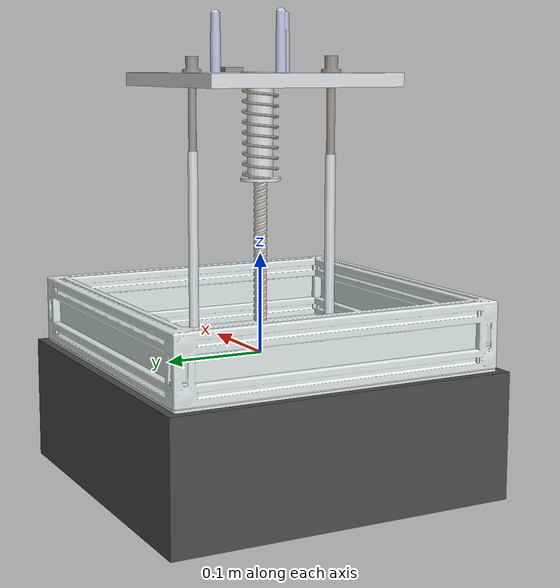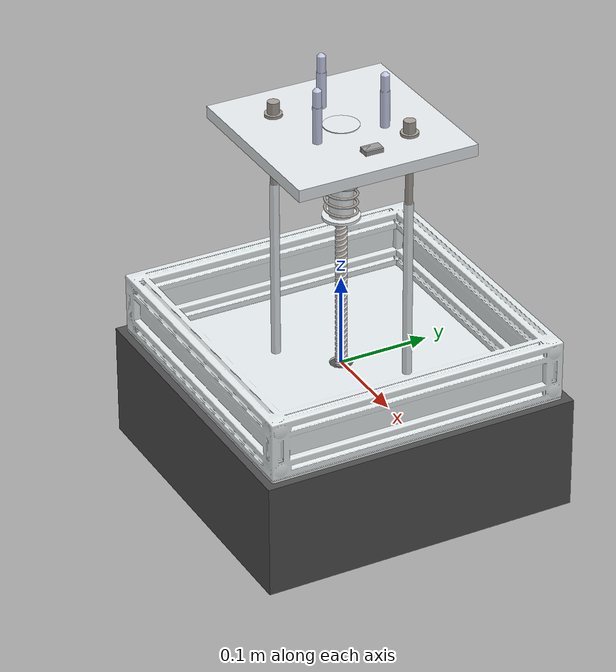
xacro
<?xml version="1.0" encoding="utf-8"?>

<robot xmlns:xacro="http://www.ros.org/wiki/xacro" name="disarm">

<xacro:include filename="$(find disarm_simulation)/urdf/lidar.xacro"/>
<xacro:include filename="$(find disarm_simulation)/urdf/chaser.xacro"/>

  <link name="Base">
    <inertial>
      <origin
        xyz="-5.55273347840374E-12 0.0198775572672886 1.8266337120941E-15"
        rpy="0 0 0" />
      <mass
        value="0.97111408193929" />
      <inertia
        ixx="0.00536135352038558"
        ixy="6.88912725720862E-21"
        ixz="3.74714690579434E-18"
        iyy="0.0106051710557368"
        iyz="2.88015866730821E-14"
        izz="0.00536135352161332" />
    </inertial>
    <visual>
      <origin
        xyz="0 0 0"
        rpy="0 0 0" />
      <geometry>
        <mesh
          filename="package://disarm_simulation/meshes/Base.dae" />
      </geometry>
      <material
        name="">
        <color
          rgba="0.898039215686275 0.92156862745098 0.929411764705882 1" />
      </material>
    </visual>
    <collision>
      <origin
        xyz="0 0 0"
        rpy="0 0 0" />
      <geometry>
        <mesh
          filename="package://disarm_simulation/meshes/Base.dae" />
      </geometry>
    </collision>
  </link>

  <link
    name="TopPlate">
    <inertial>
      <origin
        xyz="1.58955409883714E-19 -1.53656896220924E-18 -0.00635000000000002"
        rpy="0 0 0" />
      <mass
        value="0.499569903680432" />
      <inertia
        ixx="0.00169478873986709"
        ixy="4.98727833757379E-06"
        ixz="2.59647914249901E-36"
        iyy="0.00169478873986709"
        iyz="-3.78622333347601E-21"
        izz="0.00337614820810675" />
    </inertial>
    <visual>
      <origin
        xyz="0 0 0"
        rpy="0 0 0" />
      <geometry>
        <mesh
          filename="package://disarm_simulation/meshes/TopPlate.dae" />
      </geometry>
      <material
        name="">
        <color
          rgba="0.898039215686275 0.917647058823529 0.929411764705882 1" />
      </material>
    </visual>
    <collision>
      <origin
        xyz="0 0 0"
        rpy="0 0 0" />
      <geometry>
        <mesh
          filename="package://disarm_simulation/meshes/TopPlate.dae" />
      </geometry>
    </collision>
  </link>
  <joint
    name="TopFixedPlate"
    type="fixed">
    <origin
      xyz="0 0 0"
      rpy="0 0 0" />
    <parent
      link="InnerGuidingRods" />
    <child
      link="TopPlate"/>
    <axis
      xyz="0 0 0" />
  </joint>

  <link
    name="LeadScrew">
    <inertial>
      <origin
        xyz="1.98048377824802E-15 2.03812680975379E-15 0.15239979525496"
        rpy="0 0 0" />
      <mass
        value="0.0333340214720035" />
      <inertia
        ixx="0.00025706177889837"
        ixy="4.00092292165742E-10"
        ixz="-4.85652345071711E-18"
        iyy="0.000257061865946236"
        iyz="-1.00428635170997E-17"
        izz="5.98195957884321E-07" />
    </inertial>
    <visual>
      <origin
        xyz="0 0 0"
        rpy="0 0 0" />
      <geometry>
        <mesh
          filename="package://disarm_simulation/meshes/LeadScrew.dae" />
      </geometry>
      <material
        name="">
        <color
          rgba="0.776470588235294 0.756862745098039 0.737254901960784 1" />
      </material>
    </visual>
    <collision>
      <origin
        xyz="0 0 0"
        rpy="0 0 0" />
      <geometry>
        <mesh
          filename="package://disarm_simulation/meshes/LeadScrew.dae" />
      </geometry>
    </collision>
  </link>
  <joint
    name="LeadScrewJoint"
    type="fixed">
    <origin
      xyz="0 0 0.17416"
      rpy="-3.1416 0 1.5708" />
    <parent
      link="Base" />
    <child
      link="LeadScrew" />
    <axis
      xyz="0 0 0" />
  </joint>

  <link
    name="Prongs">
    <inertial>
      <origin
        xyz="0.0432711387853683 0.0296455278870579 0.02812803901053"
        rpy="0 0 0" />
      <mass
        value="0.0130196724760446" />
      <inertia
        ixx="3.69592083348409E-06"
        ixy="0"
        ixz="-4.45239866650376E-23"
        iyy="3.69592083348409E-06"
        iyz="-4.54851536693767E-24"
        izz="1.53260849655743E-07" />
    </inertial>
    <visual>
      <origin
        xyz="0 0 0"
        rpy="0 0 0" />
      <geometry>
        <mesh
          filename="package://disarm_simulation/meshes/Actuators.dae" />
      </geometry>
      <material
        name="">
        <color
          rgba="0.792156862745098 0.819607843137255 0.933333333333333 1" />
      </material>
    </visual>
    <collision>
      <origin
        xyz="0 0 0"
        rpy="0 0 0" />
      <geometry>
        <mesh
          filename="package://disarm_simulation/meshes/Actuators.dae" />
      </geometry>
    </collision>
  </link>
  <joint
    name="ProngJoint"
    type="fixed">
    <origin
      xyz="-0.04053 -0.033295 0"
      rpy="0 0 0.087041" />
    <parent
      link="TopPlate" />
    <child
      link="Prongs" />
    <axis
      xyz="0 0 0" />
  </joint>

  <link
    name="InnerGuidingRods">
    <inertial>
      <origin
        xyz="0 0 -0.07665443435274"
        rpy="0 0 0" />
      <mass
        value="0.0258518493327558" />
      <inertia
        ixx="0.000116720762269735"
        ixy="0"
        ixz="-7.4904192559537E-22"
        iyy="0.000116720762269735"
        iyz="-3.87382024352665E-22"
        izz="3.22544638923194E-07" />
    </inertial>
    <visual>
      <origin
        xyz="0 0 0"
        rpy="0 0 0" />
      <geometry>
        <mesh
          filename="package://disarm_simulation/meshes/Sensors.dae" />
      </geometry>
      <material
        name="">
        <color
          rgba="0.647058823529412 0.619607843137255 0.588235294117647 1" />
      </material>
    </visual>
    <collision>
      <origin
        xyz="0 0 0"
        rpy="0 0 0" />
      <geometry>
        <mesh
          filename="package://disarm_simulation/meshes/Sensors.dae" />
      </geometry>
    </collision>
  </link>
  <joint
    name="innerGRJoint"
    type="prismatic">
    <origin
      xyz="0 0 0.27734"
      rpy="0 0 0" />
    <parent
      link="Base" />
    <child
      link="InnerGuidingRods"/>
    <axis
      xyz="0 0 1" />
      <limit lower ="-0.1" upper="0" effort="1000" velocity = "0.2"/>
      <friction>0.05</friction>
  </joint>

   <transmission name="lift_transmission">
   	<type>transmission_interface/SimpleTransmission</type>
   	<joint name="innerGRJoint">
   		<hardwareInterface>hardware_interface/VelocityJointInterface</hardwareInterface>
   	</joint>
   	<actuator name="lift_motor">
      		<hardwareInterface>hardware_interface/VelocityJointInterface</hardwareInterface>
      		<mechanicalReduction>1</mechanicalReduction>
    	</actuator>
    </transmission>

  <link
    name="GuidingRods">
    <inertial>
      <origin
        xyz="-0.171024287797596 -0.146499999999999 0.1"
        rpy="0 0 0" />
      <mass
        value="0.0113097335529233" />
      <inertia
        ixx="3.7815036611995E-05"
        ixy="-2.7459327880969E-24"
        ixz="4.41162993361615E-23"
        iyy="3.7815036611995E-05"
        iyz="-2.30123048439557E-21"
        izz="2.31849537834927E-07" />
    </inertial>
    <visual>
      <origin
        xyz="0 0 0"
        rpy="0 0 0" />
      <geometry>
        <mesh
          filename="package://disarm_simulation/meshes/GuidingRods.dae" />
      </geometry>
      <material
        name="">
        <color
          rgba="0.898039215686275 0.917647058823529 0.929411764705882 1" />
      </material>
    </visual>
    <collision>
      <origin
        xyz="0 0 0"
        rpy="0 0 0" />
      <geometry>
        <mesh
          filename="package://disarm_simulation/meshes/GuidingRods.dae" />
      </geometry>
    </collision>
  </link>
  <joint
    name="GuidingRodsJoint"
    type="fixed">
    <origin
      xyz="0.17102 0.1465 0"
      rpy="0 0 0" />
    <parent
      link="Base" />
    <child
      link="GuidingRods"/>
    <axis
      xyz="0 0 0" />
  </joint>

  <link
    name="Spring">
    <inertial>
      <origin
        xyz="0.00061830752811633 -3.26690924024917E-05 0.0463547451997558"
        rpy="0 0 0" />
      <mass
        value="0.00451280399567217" />
      <inertia
        ixx="3.42990300571367E-06"
        ixy="-2.26257135597584E-10"
        ixz="5.85962356263877E-10"
        iyy="3.42574979185041E-06"
        iyz="1.08654493870811E-08"
        izz="1.24218274149091E-06" />
    </inertial>
    <visual>
      <origin
        xyz="0 0 0"
        rpy="0 0 0" />
      <geometry>
        <mesh
          filename="package://disarm_simulation/meshes/Spring.dae" />
      </geometry>
      <material
        name="">
        <color
          rgba="0.647058823529412 0.619607843137255 0.588235294117647 1" />
      </material>
    </visual>
    <collision>
      <origin
        xyz="0 0 0"
        rpy="0 0 0" />
      <geometry>
        <mesh
          filename="package://disarm_simulation/meshes/Spring.dae" />
      </geometry>
    </collision>
  </link>
  <joint
    name="SpringJoint"
    type="prismatic">
    <origin
      xyz="0 0 -0.105"
      rpy="0 0 1.6634" />
    <parent
      link="TopPlate" />
    <child
      link="Spring" />
    <axis
      xyz="0 0 1" />
      <limit lower ="0" upper="0" effort="1000" velocity = "0.2"/>
      <dynamics spring_stiffness="2500" spring_reference="0.06" damping="20.0"/>

  </joint>

  <link
    name="OuterShaft">
    <inertial>
      <origin
        xyz="-1.16944404750797E-18 1.08659799764285E-19 0.052847462910129"
        rpy="0 0 0" />
      <mass
        value="0.0582803621336116" />
      <inertia
        ixx="6.52475639666046E-05"
        ixy="-1.6940658945086E-21"
        ixz="-3.04521430256183E-21"
        iyy="6.52475639666046E-05"
        iyz="-5.46162562756676E-22"
        izz="5.54112270137053E-06" />
    </inertial>
    <visual>
      <origin
        xyz="0 0 0"
        rpy="0 0 0" />
      <geometry>
        <mesh
          filename="package://disarm_simulation/meshes/OuterShaft.dae" />
      </geometry>
      <material
        name="">
        <color
          rgba="0.898039215686275 0.917647058823529 0.929411764705882 1" />
      </material>
    </visual>
    <collision>
      <origin
        xyz="0 0 0"
        rpy="0 0 0" />
      <geometry>
        <mesh
          filename="package://disarm_simulation/meshes/OuterShaft.dae" />
      </geometry>
    </collision>
  </link>
  <joint
    name="OuterShaftJoint"
    type="fixed">
    <origin
      xyz="0 0 -0.105"
      rpy="0 0 1.66344608700645" />
    <parent
      link="TopPlate" />
    <child
      link="OuterShaft" />
    <axis
      xyz="0 0 0" />
  </joint>

  <joint name="lidarGlue" type="fixed">
    <parent link="TopPlate"/>
    <child link="laz_base"/>
    <origin
    xyz="0.065 0 0"
    rpy="0 -1.55 0" />
  </joint>

   <joint name="chaserGlue" type="fixed">
    <parent link="Base"/>
    <child link="chaser_body"/>
    <origin
    xyz="0 0 -0.065"
    rpy="0 0 0" />
  </joint>

  <gazebo>
  	<plugin name="disarm_plugin" filename="libdisarm_plugin.so"> </plugin>
  </gazebo>

</robot>

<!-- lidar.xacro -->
<robot xmlns:xacro="http://www.ros.org/wiki/xacro" name="lazDar">
  <xacro:property name="base_radius" value="0.005"/>
  <xacro:property name="base_height" value="0.005"/>
  <xacro:property name="laz_radius" value="0.01"/>
  <xacro:property name="laz_height" value="0.01"/>

  <gazebo reference="laz_base">
    <material>Gazebo/Grey</material>
    <mu1>0.2</mu1>
    <mu2>0.2</mu2>
  </gazebo>

  <link name="laz_base">
    <visual>
      <geometry>
        <box size="0.01 0.02 0.01"/>
      </geometry>
    </visual>

    <collision>
      <geometry>
        <box size="0.01 0.02 0.01"/>
      </geometry>
    </collision>

    <inertial>
      <mass value="0.1"/>
      <inertia ixx="${(1/12) * 0.1 * (3 * base_radius * base_radius + base_height * base_height)}" ixy="0" ixz="0" iyy="${(1/12) * 0.1 * (3 * base_radius * base_radius + base_height * base_height)}" iyz="0" izz="${(1/2) * 0.1 * base_radius * base_radius}"/>
    </inertial>
  </link>

  <gazebo reference="laz_rot">
    <material>Gazebo/Grey</material>
    <mu1>0.2</mu1>
    <mu2>0.2</mu2>
    <sensor type="ray" name="laz">
       <always_on>true</always_on>
       <pose>${laz_radius} 0 ${laz_height/4} ${pi/2} 0 0</pose>
       <visualize>true</visualize>
       <update_rate>30</update_rate>
       <ray>
         <noise>
           <type>gaussian</type>
           <mean>0.0</mean>
           <stddev>0.01</stddev>
         </noise>

         <scan>
           <horizontal>
             <samples>720</samples>
             <resolution>0.25</resolution>
             <min_angle>-${pi/8}</min_angle>
             <max_angle>${pi/8}</max_angle>
           </horizontal>
           <vertical>
             <samples>1</samples>
             <resolution>1</resolution>
             <min_angle>-0.15</min_angle>
             <max_angle>0.15</max_angle>
           </vertical>
         </scan>
          <range>
           <min>0.05</min>
           <max>15</max>
           <resolution>0.02</resolution>
         </range>
      </ray>
   </sensor>
  </gazebo>

  <link name="laz_rot">
    <visual>
      <geometry>
        <box size="0.01 0.02 0.01"/>
      </geometry>
    </visual>

    <collision>
      <geometry>
        <box size="0.01 0.02 0.01"/>
      </geometry>
    </collision>

    <inertial>
      <mass value="0.1"/>
      <inertia ixx="${(1/12) * 0.1 * (3 * laz_radius * laz_radius + laz_height * laz_height)}" ixy="0" ixz="0" iyy="${(1/12) * 0.1 * (3 * laz_radius * laz_radius + laz_height * laz_height)}" iyz="0" izz="${(1/2) * 0.1 * laz_radius * laz_radius}"/>
    </inertial>
  </link>

  <joint name="lazRot" type="continuous">
    <parent link="laz_base"/>
    <child link="laz_rot"/>
    <axis xyz="0 0 1"/>
    <origin xyz = "0 0 ${base_height/2}"/>
    <dynamics friction="0.1"/>
  </joint>

  <gazebo>
       <plugin name="mysensor_plugin" filename="libmysensor_plugin.so"> </plugin>
  </gazebo>

</robot>

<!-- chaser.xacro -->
<robot xmlns:xacro="http://www.ros.org/wiki/xacro" name="chaser">

<xacro:property name="body_height" value="0.125" />
<xacro:property name="body_width" value="0.35" />
<xacro:property name="body_length" value="0.35" />

<gazebo reference="chaser_body">
    <material>Gazebo/DarkGrey</material>
    <mu1>0</mu1>
    <mu2>0</mu2>
</gazebo>

<link name="chaser_body">
    <visual>
      <geometry>
        <box size="${body_length} ${body_width} ${body_height}"/>
      </geometry>
    </visual>

    <collision>
      <geometry>
        <box size="${body_length} ${body_width} ${body_height}"/>
      </geometry>
    </collision>

    <inertial>
      <mass value="0.18"/>
      <inertia ixx="6.0e-4" ixy="0" ixz="0" iyy="6.0e-4" iyz="0" izz="6.0e-4"/>
    </inertial>

</link>

  <gazebo>
  	<plugin name="plannar_mover_plugin" filename="libplannar_mover_plugin.so"> </plugin>
  </gazebo>

</robot>
